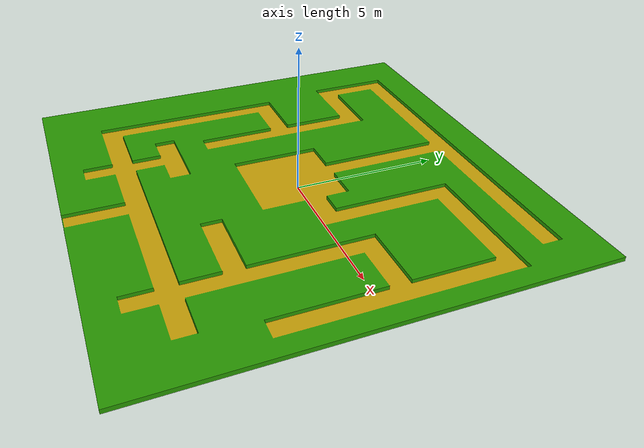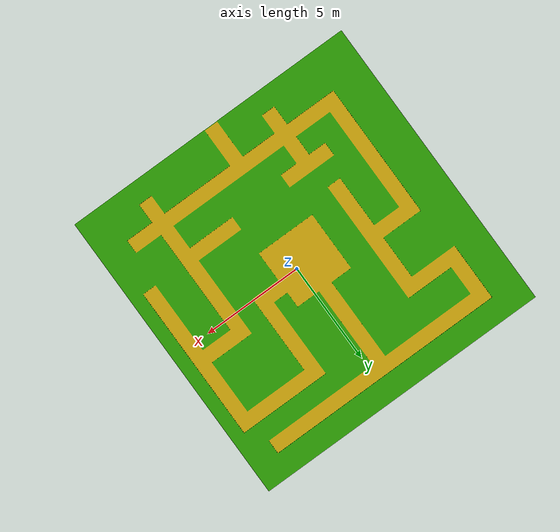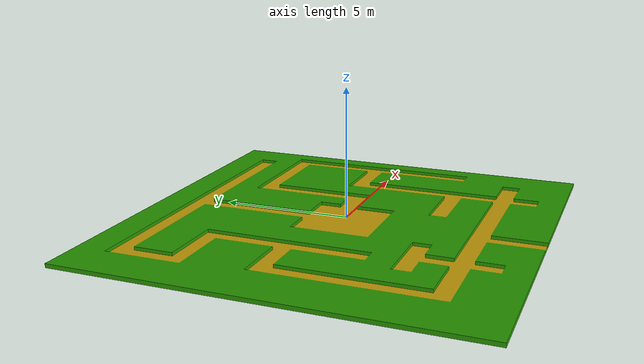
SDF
<?xml version='1.0'?>
<sdf version="1.4">
<model name="laberinto">
  <pose>0 0 0 0 0 0</pose>
  <static>true</static>
    <link name="laberinto">
    	<pose>0 0 0.749745 0 0 0</pose>
      <collision name="collision">
            <geometry>
              <mesh>
            		<uri>model://laberinto/meshes/laberinto.dae</uri>
          		</mesh>
          </geometry>
     </collision>
      <visual name="visual">
        <geometry>
          <mesh>
            <uri>model://laberinto/meshes/laberinto.dae</uri>
        </mesh>
      </geometry>
    </visual>
  </link>
</model>
</sdf>
